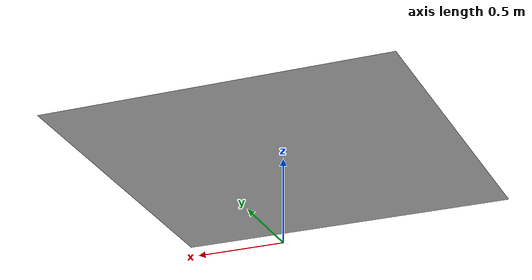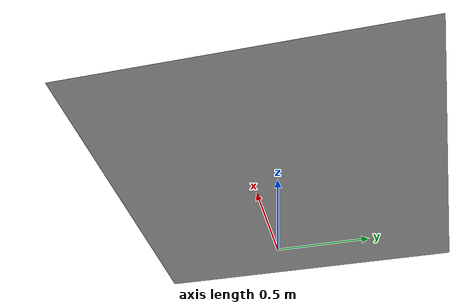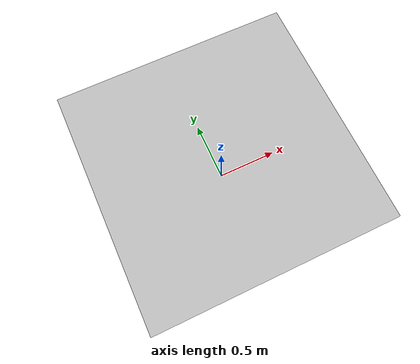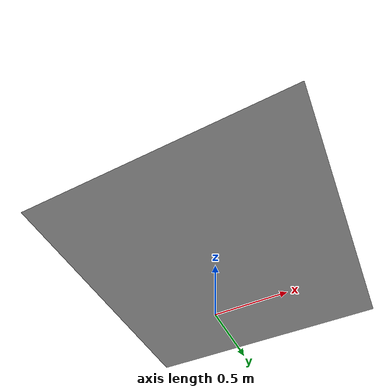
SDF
<?xml version="1.0" ?>
<sdf version="1.4">
  <model name="relative_paths">
    <pose>0 0 0.5 0 0 0</pose>
    <link name="link">
      <collision name="collision">
        <geometry>
          <mesh>
            <uri>meshes/test.dae</uri>
          </mesh>
        </geometry>
      </collision>
      <visual name="visual">
        <geometry>
          <mesh>
            <uri>meshes/test.dae</uri>
          </mesh>
        </geometry>
      </visual>
    </link>
  </model>
</sdf>
